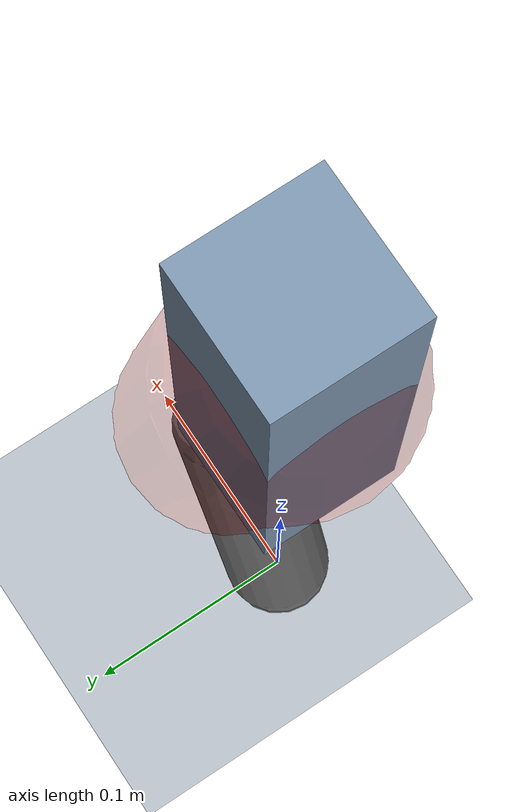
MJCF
<mujoco model="Hopper2D">
	<compiler inertiafromgeom="true" angle="radian" />
	<option timestep="0.001" integrator="implicit" cone="elliptic" solver="Newton" tolerance="1e-10" />

	<default>
		<geom contype="1" conaffinity="1" condim="3" friction="2 0.005 0.0001" solref="0.005 1" />
		<joint limited="true" damping="0.1" />
	</default>

	<asset>
		<texture name="skybox" type="skybox" builtin="gradient" rgb1=".4 .6 .8" rgb2="0 0 0" width="800" height="800" />
		<texture name="grid" type="2d" builtin="checker" rgb1=".1 .2 .3" rgb2=".2 .3 .4" width="300" height="300" mark="edge" markrgb=".2 .3 .4" />
		<material name="ground" texture="grid" texrepeat="1 1" texuniform="true" reflectance="0.1" />
		<material name="leg" rgba="0.5 0.6 0.7 1" />
	</asset>

	<worldbody>

		<geom name="floor" type="plane" size="5 5 0.25" material="ground" />

		<light directional="false" diffuse="0.8 0.8 0.8" specular="0.3 0.3 0.3" pos="0 0 2" dir="0 0 -1" />
		<light mode="targetbodycom" target="base" directional="false" diffuse="0.8 0.8 0.8" specular="0.3 0.3 0.3" pos="0 0 2" dir="0 0 -1" />

		<camera name="fixed" pos="0 -2 1" xyaxes="1 0 0 0 0 1" />
		<camera name="tracking" mode="trackcom" pos="0 -3 1" />

		<body name="root" pos="0 0 0.3318108410892182">
			<joint name="slide_x" type="slide" axis="1 0 0" range="-100 100" />
			<joint name="slide_z" type="slide" axis="0 0 1" range="0 10" />

			<body name="base" pos="0 0 0">
				<geom name="torso" type="box" size="0.03 0.03 0.1" mass="3.601" material="leg" />

				<body name="link1" pos="0 0 0" euler="0 1.353398772238911 0">
					<joint type="hinge" axis="0 -1 0" pos="0 0 0" name="hinge1" limited="true" range="-3.14 3.14" stiffness="0" damping="0.1" />
					<geom name="thigh" type="capsule" fromto="0 0 0 0.1891118562581057 0 0" size="0.05" rgba="0.5 0 0 0.3" mass="0.7027796406452642" />

					<body name="link2" pos="0.1891118562581057 0 0" euler="0 0.4878036413888122 0">
						<joint type="hinge" axis="0 -1 0" pos="0 0 0" name="hinge2" limited="true" range="-3.14 3.14" stiffness="0" damping="0.1" />
						<geom name="shank" type="capsule" fromto="0 0 0 0.15269898483111252 0 0" size="0.025" mass="0.3601290863480013" />

					</body>
				</body>
			</body>
		</body>
	</worldbody>

	<actuator>
		<motor name="torque1" joint="hinge1" ctrlrange="-236.660011090659 236.660011090659" ctrllimited="true" gear="1" />
		<motor name="torque2" joint="hinge2" ctrlrange="-49.249126233950456 49.249126233950456" ctrllimited="true" gear="1" />
	</actuator>
</mujoco>
